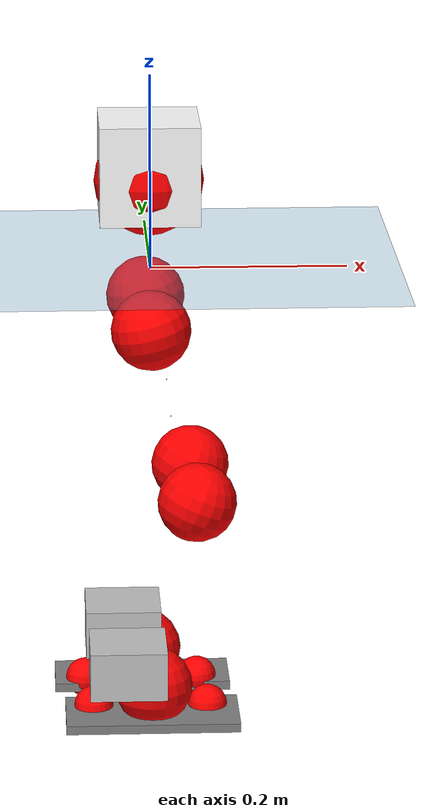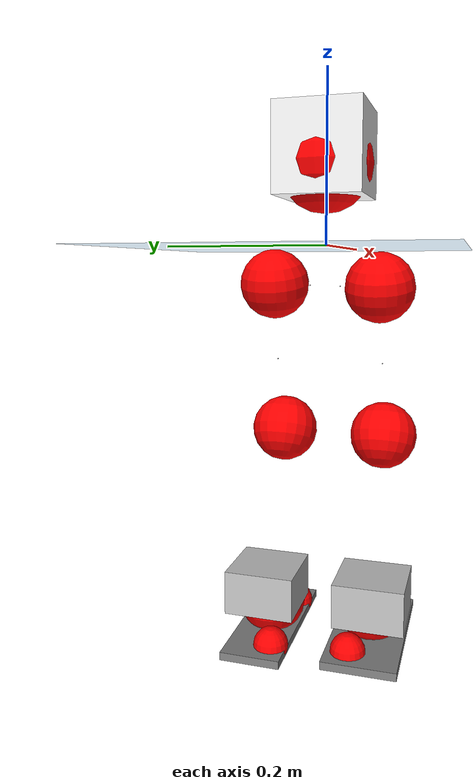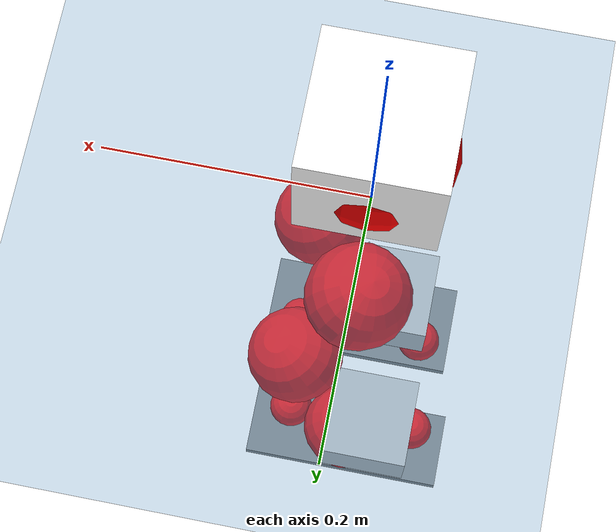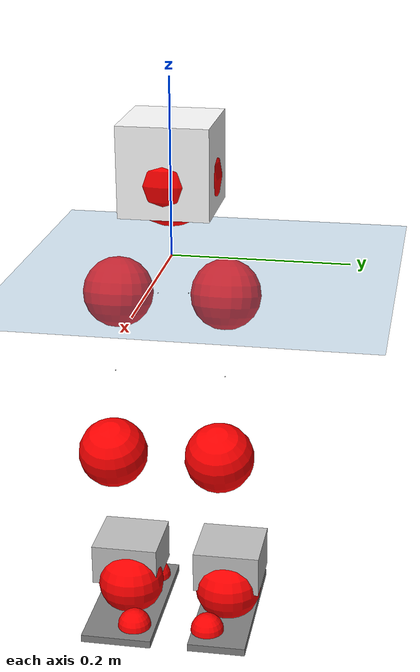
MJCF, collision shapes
<mujoco model="pi_12dof_release_v1">
  <compiler angle="radian" assetdir="assets" balanceinertia="true" inertiafromgeom="false"/>

  <option timestep="0.005" density="1.2" viscosity="2e-05"/>

  <size nkey="1"/>

  <visual>
    <quality shadowsize="8192"/>
    <map shadowclip="0.5"/>
  </visual>

  <default>
    <default class="/">
      <joint armature="0.01" damping="0.01" frictionloss="0.01"/>
      <geom contype="0" conaffinity="0" group="1" solref="-1000 -80"/>
      <site size="0.01 0.005 0.005" group="5"/>
      <general forcelimited="true" biastype="affine" gainprm="20" biasprm="0 -20 -0.5"/>
      <default class="foot">
        <geom size="0.0845 0.036 0.005" type="box" condim="6" group="4" priority="1" friction="0.9 0.2 0.2" solimp="0.015 1 0.005"/>
      </default>
      <default class="reward_collision_sphere">
        <geom group="5" rgba="1 0 0 1"/>
      </default>
    </default>
  </default>

  <asset>
    <texture type="skybox" colorspace="auto" name="//unnamed_texture_0" builtin="gradient" rgb1="0.95 0.95 0.95" rgb2="0.95 0.95 0.95" width="100" height="600"/>
    <texture type="2d" colorspace="auto" name="texplane" builtin="checker" rgb1="0.345 0.575 0.748" rgb2="0.345 0.575 0.748" markrgb="1 1 1" width="512" height="512"/>
    <material name="MatPlane" class="/" texture="texplane" texuniform="true" texrepeat="2 2" specular="0.9"/>
    <mesh name="baselink_1" class="/" file="baselink_1.STL"/>
    <mesh name="r_hip_pitch_link" class="/" file="r_hip_pitch_link.STL"/>
    <mesh name="r_hip_roll_link" class="/" file="r_hip_roll_link.STL"/>
    <mesh name="r_thigh_link" class="/" file="r_thigh_link.STL"/>
    <mesh name="r_calf_link" class="/" file="r_calf_link.STL"/>
    <mesh name="r_ankle_pitch_link" class="/" file="r_ankle_pitch_link.STL"/>
    <mesh name="r_ankle_roll_link" class="/" file="r_ankle_roll_link.STL"/>
    <mesh name="l_hip_pitch_link" class="/" file="l_hip_pitch_link.STL"/>
    <mesh name="l_hip_roll_link" class="/" file="l_hip_roll_link.STL"/>
    <mesh name="l_thigh_link" class="/" file="l_thigh_link.STL"/>
    <mesh name="l_calf_link" class="/" file="l_calf_link.STL"/>
    <mesh name="l_ankle_pitch_link" class="/" file="l_ankle_pitch_link.STL"/>
    <mesh name="l_ankle_roll_link" class="/" file="l_ankle_roll_link.STL"/>
  </asset>

  <worldbody>
    <geom name="floor" class="/" size="100 100 0.125" type="plane" group="0" material="MatPlane"/>
    <light name="toplight_shadow" class="/" pos="0 0 5" dir="0.0990148 0.0990148 -0.990148" type="directional" ambient="0.04 0.04 0.04" diffuse="0.55 0.55 0.55" specular="0.12 0.12 0.12"/>
    <light name="toplight_fill" class="/" pos="0 0 5" dir="0.0990148 0.0990148 -0.990148" type="directional" castshadow="false" ambient="0.04 0.04 0.04" diffuse="0.3 0.3 0.3" specular="0.08 0.08 0.08"/>
    <body name="trunk" pos="-0.00132041 0.00113392 -0.00249924" quat="1 0.000613404 0.000366728 0.000607113">
      <inertial pos="-0.000334831 0.00181513 0.0540797" quat="0.693981 0.0107379 0.00936904 0.719852" mass="2.28209" diaginertia="0.00497868 0.00327934 0.0182079"/>
      <joint name="//unnamed_joint_0" type="free"/>
      <geom name="//unnamed_geom_1" class="/" type="mesh" density="0" rgba="1 1 1 1" mesh="baselink_1"/>
      <geom name="//unnamed_geom_2" class="/" size="0.0505995 0.0505995 0.0505995" pos="0 0 0.107626" type="box" rgba="1 1 1 1"/>
      <geom name="//unnamed_geom_3" class="reward_collision_sphere" size="0.0556594" pos="0 0 0.0941729"/>
      <site name="imu" class="/" pos="0.011487 0.0128149 -0.0136063" size="0.0101199"/>
      <camera name="track" class="/" pos="0 -1.63406 0" quat="0.707107 0.707107 0 0" mode="trackcom"/>
      <camera name="ego_camera" class="/" pos="0.0655208 0 0.242159" quat="-0.5 -0.5 0.5 0.5"/>
      <body name="r_hip_pitch_link" pos="-0.000438987 -0.0185729 -0.044353" quat="0.992164 0.000422011 -0.124935 0.00101256">
        <inertial pos="-0.00165665 -0.0460561 -0.00145687" quat="-0.0180945 0.703598 -0.0332229 0.70959" mass="0.379044" diaginertia="5.42951e-05 3.51192e-05 0.00037205"/>
        <joint name="r_hip_pitch_joint" class="/" pos="0 0 0" axis="0.00269384 -0.99996 -0.0085464" stiffness="0.00595815" range="-1.77174 1.25206" armature="0.00892141" damping="0.0262643" frictionloss="0.0113841"/>
        <geom name="//unnamed_geom_4" class="/" type="mesh" density="0" rgba="0.75294 0.75294 0.75294 1" mesh="r_hip_pitch_link"/>
        <geom name="//unnamed_geom_5" class="/" size="0.000505995 0.000505995 0.000505995" type="box" rgba="0.75294 0.75294 0.75294 1"/>
        <body name="r_hip_roll_link" pos="-0.000281741 -0.0460678 -0.000968793" quat="1 -0.000432776 -8.88297e-05 0.000479574">
          <inertial pos="-0.00114025 0.00108633 -0.0793457" quat="0.708245 -0.0836693 -0.0933488 0.694748" mass="0.392081" diaginertia="0.000172186 9.76586e-05 0.000574838"/>
          <joint name="r_hip_roll_joint" class="/" pos="0 0 0" axis="-0.999982 0.00564552 -0.0019892" range="-0.106864 0.481334" armature="0.0115922" damping="0" frictionloss="0.00877234"/>
          <geom name="//unnamed_geom_6" class="/" type="mesh" density="0" rgba="0.75294 0.75294 0.75294 1" mesh="r_hip_roll_link"/>
          <geom name="//unnamed_geom_7" class="/" size="0.000505995 0.000505995 0.000505995" type="box" rgba="0.75294 0.75294 0.75294 1"/>
          <geom name="//unnamed_geom_8" class="reward_collision_sphere" size="0.0404796"/>
          <body name="r_thigh_link" pos="-0.00307969 -0.00151847 -0.0916415" quat="1 5.33503e-05 0.000256812 -0.000175808">
            <inertial pos="-0.00182562 -0.00141978 -0.0623334" quat="0.736956 0.675939 -0.000728193 -0.00119907" mass="0.114114" diaginertia="6.40089e-05 3.31389e-05 0.000253319"/>
            <joint name="r_thigh_joint" class="/" pos="0 0 0" axis="0.00854345 0.00597096 -0.999946" range="-0.251881 0.641754" armature="0.0110402" damping="0" frictionloss="0.0114498"/>
            <geom name="//unnamed_geom_9" class="/" type="mesh" density="0" rgba="0.75294 0.75294 0.75294 1" mesh="r_thigh_link"/>
            <geom name="//unnamed_geom_10" class="/" size="0.000505995 0.000505995 0.000505995" type="box" rgba="0.75294 0.75294 0.75294 1"/>
            <body name="r_calf_link" pos="0.0028009 0.000846843 -0.0959363" quat="0.947633 3.26859e-05 0.31936 2.38031e-06">
              <inertial pos="-0.00327751 -0.00242268 -0.094296" quat="0.999957 -0.00819217 4.68906e-05 0.00432169" mass="0.826787" diaginertia="0.00170688 0.00129438 0.000771757"/>
              <joint name="r_calf_joint" class="/" pos="0 0 0" axis="0.00632994 -0.999922 0.0107473" stiffness="0.00441286" range="-1.66769 0.643846" armature="0.00970968" damping="0.0132823" frictionloss="0.010597"/>
              <geom name="//unnamed_geom_11" class="/" type="mesh" density="0" rgba="0.75294 0.75294 0.75294 1" mesh="r_calf_link"/>
              <geom name="//unnamed_geom_12" class="/" size="0.000505995 0.000505995 0.000505995" type="box" rgba="0.75294 0.75294 0.75294 1"/>
              <geom name="//unnamed_geom_13" class="reward_collision_sphere" size="0.0404796"/>
              <body name="r_ankle_pitch_link" pos="0.00232278 -0.000105097 -0.188498" quat="0.980218 -0.000435752 -0.197917 -0.00121228">
                <inertial pos="0.00516399 0.00302611 0.00143111" quat="-0.00600178 0.713817 0.00379057 0.700296" mass="0.18526" diaginertia="0.000149371 7.92565e-05 0.000518087"/>
                <joint name="r_ankle_pitch_joint" class="/" pos="0 0 0" axis="-0.00968605 -0.999924 -0.00767299" stiffness="0.00950119" range="-1.29483 0.459258" armature="0.00998948" damping="0.0145603" frictionloss="0.0100106"/>
                <geom name="//unnamed_geom_14" class="/" type="mesh" density="0" rgba="0.75294 0.75294 0.75294 1" mesh="r_ankle_pitch_link"/>
                <geom name="//unnamed_geom_15" class="/" size="0.0394676 0.0404796 0.0252997" type="box" rgba="0.75294 0.75294 0.75294 1"/>
                <body name="r_ankle_roll_link" pos="0.0696095 0.00563428 0.00171927" quat="1 -0.000374853 4.63228e-05 -0.000256823">
                  <inertial pos="-0.0195795 -0.000987188 -0.0223287" quat="0.550856 0.432417 0.441191 0.561181" mass="0.551194" diaginertia="0.000616718 0.00037724 0.0013047"/>
                  <joint name="r_ankle_roll_joint" class="/" pos="0 0 0" axis="-0.999993 -0.000396028 0.00368872" stiffness="0.00588966" range="-0.117223 0.156175" armature="0.0107815" damping="0.00766169" frictionloss="0.00895127"/>
                  <geom name="//unnamed_geom_16" class="/" type="mesh" density="0" rgba="0.75294 0.75294 0.75294 1" mesh="r_ankle_roll_link"/>
                  <geom name="//unnamed_geom_17" class="/" type="mesh" rgba="0.75294 0.75294 0.75294 1" mesh="r_ankle_roll_link"/>
                  <geom name="right_foot" class="foot" size="0.0894106 0.0423614 0.00460793" pos="-0.0445542 0 -0.0591944"/>
                  <geom name="//unnamed_geom_19" class="reward_collision_sphere" size="0.0404796" pos="-0.0436805 0 -0.0269066"/>
                  <geom name="//unnamed_geom_20" class="reward_collision_sphere" size="0.0202398" pos="0.0131042 0.0163406 -0.0538131"/>
                  <geom name="//unnamed_geom_21" class="reward_collision_sphere" size="0.0202398" pos="-0.104833 0.0163406 -0.0538131"/>
                  <site name="right_foot" class="foot" pos="-0.0445542 0 -0.0591944" size="0.0101199"/>
                </body>
              </body>
            </body>
          </body>
        </body>
      </body>
      <body name="l_hip_pitch_link" pos="-0.00237315 0.0163924 -0.043152" quat="0.992169 -0.000418452 -0.124899 -0.000557364">
        <inertial pos="0.00104519 0.0434876 0.000479313" quat="-0.0411639 0.706654 0.0333655 0.705572" mass="0.395963" diaginertia="6.4553e-05 3.71246e-05 0.00043962"/>
        <joint name="l_hip_pitch_joint" class="/" pos="0 0 0" axis="0.00922402 0.999955 -0.00233008" stiffness="0.00293569" range="-1.22524 1.75157" armature="0.010639" damping="0.0142789" frictionloss="0.00947918"/>
        <geom name="//unnamed_geom_22" class="/" type="mesh" density="0" rgba="0.75294 0.75294 0.75294 1" mesh="l_hip_pitch_link"/>
        <geom name="//unnamed_geom_23" class="/" size="0.000505995 0.000505995 0.000505995" type="box" rgba="0.75294 0.75294 0.75294 1"/>
        <body name="l_hip_roll_link" pos="0.000558337 0.0433649 0.000996533" quat="1 0.000345443 3.15862e-05 6.11412e-05">
          <inertial pos="-0.00110828 0.00216872 -0.0793401" quat="0.700375 -0.0728779 -0.0785927 0.705682" mass="0.407649" diaginertia="0.000178107 0.000103325 0.000591563"/>
          <joint name="l_hip_roll_joint" class="/" pos="0 0 0" axis="-0.999998 0.00122574 -0.00138656" stiffness="0.0102213" range="-0.474661 0.130147" armature="0.00891883" damping="0.017065" frictionloss="0.010186"/>
          <geom name="//unnamed_geom_24" class="/" type="mesh" density="0" rgba="0.75294 0.75294 0.75294 1" mesh="l_hip_roll_link"/>
          <geom name="//unnamed_geom_25" class="/" size="0.000505995 0.000505995 0.000505995" type="box" rgba="0.75294 0.75294 0.75294 1"/>
          <geom name="//unnamed_geom_26" class="reward_collision_sphere" size="0.0404796"/>
          <body name="l_thigh_link" pos="-0.00182374 0.00234296 -0.0942227" quat="1 -0.000125169 7.65769e-06 -0.00023097">
            <inertial pos="0.00232016 -0.00324759 -0.0622457" quat="0.676925 0.73605 0.00140278 0.000902473" mass="0.114914" diaginertia="6.32592e-05 3.55256e-05 0.000245819"/>
            <joint name="l_thigh_joint" class="/" pos="0 0 0" axis="-0.00126917 0.00313045 -0.999994" stiffness="0.0116875" range="-0.61186 0.251397" armature="0.0101101" damping="0.00955476" frictionloss="0.00969743"/>
            <geom name="//unnamed_geom_27" class="/" type="mesh" density="0" rgba="0.75294 0.75294 0.75294 1" mesh="l_thigh_link"/>
            <geom name="//unnamed_geom_28" class="/" size="0.000505995 0.000505995 0.000505995" type="box" rgba="0.75294 0.75294 0.75294 1"/>
            <body name="l_calf_link" pos="0.000994431 -0.00243854 -0.0947982" quat="0.947568 0.00109526 0.319551 0.000212699">
              <inertial pos="-7.01547e-05 0.00239774 -0.0953136" quat="0.999985 0.00270511 -0.000479001 0.00478491" mass="0.893626" diaginertia="0.00180237 0.00127696 0.000791281"/>
              <joint name="l_calf_joint" class="/" pos="0 0 0" axis="0.00464682 0.999971 0.00603145" range="-0.694874 1.63681" armature="0.00992456" damping="0.00937225" frictionloss="0.011481"/>
              <geom name="//unnamed_geom_29" class="/" type="mesh" density="0" rgba="0.75294 0.75294 0.75294 1" mesh="l_calf_link"/>
              <geom name="//unnamed_geom_30" class="/" size="0.000505995 0.000505995 0.000505995" type="box" rgba="0.75294 0.75294 0.75294 1"/>
              <geom name="//unnamed_geom_31" class="reward_collision_sphere" size="0.0404796"/>
              <body name="l_ankle_pitch_link" pos="0.002814 0.000900184 -0.190044" quat="0.980049 0.000280321 -0.198757 0.000168266">
                <inertial pos="0.00218138 0.000629602 -0.000460905" quat="-0.00453174 0.706792 0.00211555 0.707404" mass="0.180754" diaginertia="0.000161093 8.00926e-05 0.000528843"/>
                <joint name="l_ankle_pitch_joint" class="/" pos="0 0 0" axis="0.000131084 0.999993 -0.00380182" range="-0.48963 1.27695" armature="0.00984798" damping="0.000654134" frictionloss="0.0111797"/>
                <geom name="//unnamed_geom_32" class="/" type="mesh" density="0" rgba="0.75294 0.75294 0.75294 1" mesh="l_ankle_pitch_link"/>
                <geom name="//unnamed_geom_33" class="/" size="0.0394676 0.0404796 0.0252997" type="box" rgba="0.75294 0.75294 0.75294 1"/>
                <body name="l_ankle_roll_link" pos="0.0642938 0.000141394 -0.000422346" quat="1 0.000569906 0.000396926 0.000645031">
                  <inertial pos="-0.0194138 -0.000837412 -0.0190866" quat="0.555804 0.432467 0.432261 0.563209" mass="0.519983" diaginertia="0.000549874 0.000367168 0.00121806"/>
                  <joint name="l_ankle_roll_joint" class="/" pos="0 0 0" axis="-0.999941 -0.0050974 0.00957919" range="-0.105907 0.153979" armature="0.0106119" damping="0.0159769" frictionloss="0.0100353"/>
                  <geom name="//unnamed_geom_34" class="/" type="mesh" density="0" rgba="0.75294 0.75294 0.75294 1" mesh="l_ankle_roll_link"/>
                  <geom name="//unnamed_geom_35" class="/" type="mesh" rgba="0.75294 0.75294 0.75294 1" mesh="l_ankle_roll_link"/>
                  <geom name="left_foot" class="foot" size="0.0919759 0.0346393 0.00460455" pos="-0.0445542 0 -0.0591944"/>
                  <geom name="//unnamed_geom_37" class="reward_collision_sphere" size="0.0404796" pos="-0.0436805 0 -0.0269066"/>
                  <geom name="//unnamed_geom_38" class="reward_collision_sphere" size="0.0202398" pos="0.0131042 -0.0163406 -0.0538131"/>
                  <geom name="//unnamed_geom_39" class="reward_collision_sphere" size="0.0202398" pos="-0.104833 -0.0163406 -0.0538131"/>
                  <site name="left_foot" class="foot" pos="-0.0445542 0 -0.0591944" size="0.0101199"/>
                </body>
              </body>
            </body>
          </body>
        </body>
      </body>
    </body>
  </worldbody>

  <contact>
    <pair class="/" geom1="floor" geom2="right_foot" name="//unnamed_contact_1"/>
    <pair class="/" geom1="floor" geom2="left_foot" name="//unnamed_contact_0"/>
  </contact>

  <actuator>
    <general name="r_hip_pitch_joint" class="/" joint="r_hip_pitch_joint" forcerange="-21.4949 21.4949" gainprm="20.7101" biasprm="0 -20.7101 -0.489998"/>
    <general name="r_hip_roll_joint" class="/" joint="r_hip_roll_joint" forcerange="-21.5919 21.5919" gainprm="20.7101" biasprm="0 -20.7101 -0.489998"/>
    <general name="r_thigh_joint" class="/" joint="r_thigh_joint" forcerange="-23.2678 23.2678" gainprm="20.7101" biasprm="0 -20.7101 -0.489998"/>
    <general name="r_calf_joint" class="/" joint="r_calf_joint" forcerange="-19.0858 19.0858" gainprm="20.7101" biasprm="0 -20.7101 -0.489998"/>
    <general name="r_ankle_pitch_joint" class="/" joint="r_ankle_pitch_joint" forcerange="-23.3813 23.3813" gainprm="20.7101" biasprm="0 -20.7101 -0.489998"/>
    <general name="r_ankle_roll_joint" class="/" joint="r_ankle_roll_joint" forcerange="-23.0885 23.0885" gainprm="20.7101" biasprm="0 -20.7101 -0.489998"/>
    <general name="l_hip_pitch_joint" class="/" joint="l_hip_pitch_joint" forcerange="-22.793 22.793" gainprm="20.7101" biasprm="0 -20.7101 -0.489998"/>
    <general name="l_hip_roll_joint" class="/" joint="l_hip_roll_joint" forcerange="-21.303 21.303" gainprm="20.7101" biasprm="0 -20.7101 -0.489998"/>
    <general name="l_thigh_joint" class="/" joint="l_thigh_joint" forcerange="-21.879 21.879" gainprm="20.7101" biasprm="0 -20.7101 -0.489998"/>
    <general name="l_calf_joint" class="/" joint="l_calf_joint" forcerange="-21.4387 21.4387" gainprm="20.7101" biasprm="0 -20.7101 -0.489998"/>
    <general name="l_ankle_pitch_joint" class="/" joint="l_ankle_pitch_joint" forcerange="-22.8543 22.8543" gainprm="20.7101" biasprm="0 -20.7101 -0.489998"/>
    <general name="l_ankle_roll_joint" class="/" joint="l_ankle_roll_joint" forcerange="-18.9451 18.9451" gainprm="20.7101" biasprm="0 -20.7101 -0.489998"/>
  </actuator>

  <sensor>
    <gyro site="imu" name="imu_angular_velocity"/>
    <velocimeter site="imu" name="imu_linear_velocity"/>
    <framelinvel objtype="site" objname="left_foot" name="left_foot_global_linear_velocity"/>
    <framelinvel objtype="site" objname="right_foot" name="right_foot_global_linear_velocity"/>
  </sensor>

  <keyframe>
    <key name="home" qpos="0 0 0.291 1 0 0 0 0.4 0 0 -0.8 0.4 0 -0.4 0 0 0.8 -0.4 0"/>
  </keyframe>
</mujoco>
